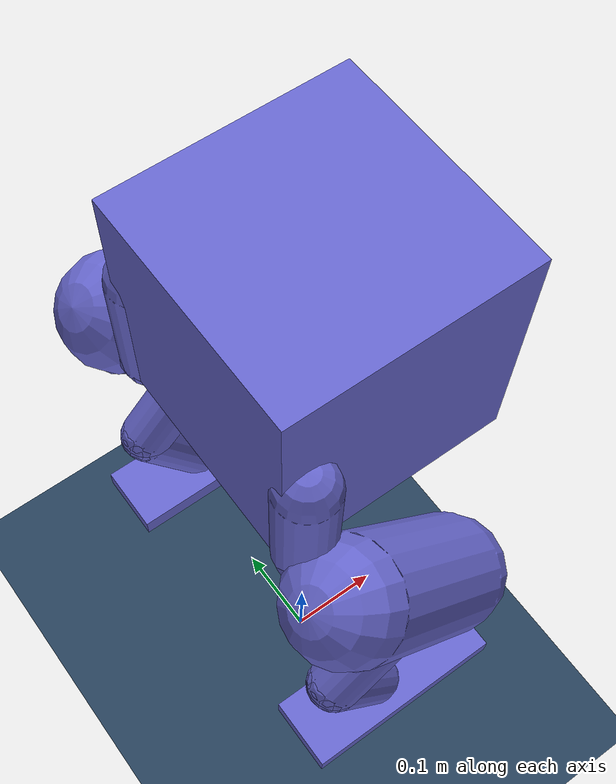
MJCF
<mujoco model="biped">
    <compiler angle="degree" autolimits="true"/>
    <option gravity="0 0 -9.81" integrator="RK4" timestep="0.01"/>

    <asset>
        <texture name="grid" type="2d" builtin="checker" width="512" height="512" rgb1=".1 .2 .3" rgb2=".2 .3 .4"/>
        <material name="grid" texture="grid" texrepeat="1 1" texuniform="true" reflectance=".2"/>
    </asset>

    <worldbody>
        <geom name="floor" size="0 0 .05" type="plane" material="grid" conaffinity="15" condim="3"/>
        <light name="spotlight" mode="targetbodycom" target="torso" diffuse=".8 .8 .8" specular="0.3 0.3 0.3" pos="0 -20 4" cutoff="10"/>

        <!-- Torso -->
        <body name="torso" pos="0 0 0.65" euler="0 0 90">
            <geom type="box" size="0.1 0.1 0.1" rgba="0.4 0.4 0.8 1"/>

            <!-- Left Leg -->
            <body name="left_pelvis" pos="-0.1 0.08 0" euler="0 0 -90">
                <joint name="LHIE_joint" type="hinge" axis="0 0 -1" pos="0 0 0" range="-90 90" ref="0"/>
                <geom type="capsule" size="0.025 0.025" fromto="0 0 0 0 0 -0.1" rgba="0.4 0.4 0.8 1"/>
                <body name="left_hip" pos="0 0 -0.1" euler="-90 0 0">
                    <joint name="LHAA_joint" type="hinge" axis="-1 0 0" pos="0 0 0" range="-90 90" ref="0"/>
                    <geom type="capsule" size="0.025 0.025" fromto="0 0 0 0 0 -0.05" rgba="0.4 0.4 0.8 1"/>
                    <body name="left_thigh" pos="0 0 -0.05" euler="90 -45 0">
                        <joint name="LHFE_joint" type="hinge" axis="0 -1 0" pos="0 0 0" range="-45 135" ref="45"/>
                        <geom type="capsule" size="0.05 0.25" fromto="0 0 0 0 0 -0.15" rgba="0.4 0.4 0.8 1"/>
                        <body name="left_shin" pos="0 0 -0.15" euler="0 90 0">
                            <joint name="LKFE_joint" type="hinge" axis="0 1 0" pos="0 0 0" range="0 135" ref="90"/>
                            <geom type="capsule" size="0.025 0.025" fromto="0 0 0 0 0 -0.15" rgba="0.4 0.4 0.8 1"/>
                            <body name="left_ankle" pos="0 0 -0.15" euler="0 -75 0">
                                <joint name="LADPF_joint" type="hinge" axis="0 -1 0" pos="0 0 0" range="0 135" ref="75"/>
                                <geom type="capsule" size="0.025 0.025" fromto="0 0 0 0 0 -0.1" rgba="0.4 0.4 0.8 1"/>
                                <body name="left_foot" pos="0 0 -0.13" euler="0 30 0">
                                    <joint name="LTFE_joint" type="hinge" axis="0 1 0" pos="0 0 0" range="-15 15"/>
                                    <joint name="LTAA_joint" type="hinge" axis="-1 0 0" pos="0 0 0" range="-15 15"/>
                                    <body name="left_toe" pos="0 0 0" euler="0 0 0">
                                        <geom type="box" size="0.1 0.035 0.01" rgba="0.4 0.4 0.8 1"/>
                                    </body>
                                </body>
                            </body>
                        </body>
                    </body>
                </body>
            </body>

            <!-- Right Leg -->
            <body name="right_pelvis" pos="0.1 0.08 0" euler="0 0 -90">
                <joint name="RHIE_joint" type="hinge" axis="0 0 1" pos="0 0 0" range="-90 90" ref="0"/>
                <geom type="capsule" size="0.025 0.025" fromto="0 0 0 0 0 -0.1" rgba="0.4 0.4 0.8 1"/>
                <body name="right_hip" pos="0 0 -0.1" euler="-90 0 0">
                    <joint name="RHAA_joint" type="hinge" axis="1 0 0" pos="0 0 0" range="-90 90" ref="0"/>
                    <geom type="capsule" size="0.025 0.025" fromto="0 0 0 0 0 0.05" rgba="0.4 0.4 0.8 1"/>
                    <body name="right_thigh" pos="0 0 0.05" euler="90 -45 0">
                        <joint name="RHFE_joint" type="hinge" axis="0 -1 0" pos="0 0 0" range="-45 135" ref="45"/>
                        <geom type="capsule" size="0.05 0.25" fromto="0 0 0 0 0 -0.15" rgba="0.4 0.4 0.8 1"/>
                        <body name="right_shin" pos="0 0 -0.15" euler="0 90 0">
                            <joint name="RKFE_joint" type="hinge" axis="0 1 0" pos="0 0 0" range="0 135" ref="90"/>
                            <geom type="capsule" size="0.025 0.025" fromto="0 0 0 0 0 -0.15" rgba="0.4 0.4 0.8 1"/>
                            <body name="right_ankle" pos="0 0 -0.15" euler="0 -75 0">
                                <joint name="RADPF_joint" type="hinge" axis="0 -1 0" pos="0 0 0" range="0 135" ref="75"/>
                                <geom type="capsule" size="0.025 0.025" fromto="0 0 0 0 0 -0.1" rgba="0.4 0.4 0.8 1"/>
                                <body name="right_foot" pos="0 0 -0.13" euler="0 30 0">
                                    <joint name="RTFE_joint" type="hinge" axis="0 -1 0" pos="0 0 0" range="-15 15"/>
                                    <joint name="RTAA_joint" type="hinge" axis="1 0 0" pos="0 0 0" range="-15 15"/>
                                    <body name="right_toe" pos="0 0 0" euler="0 0 0">
                                        <geom type="box" size="0.1 0.035 0.01" rgba="0.4 0.4 0.8 1"/>
                                    </body>
                                </body>
                            </body>
                        </body>
                    </body>
                </body>
            </body>

        </body>

    </worldbody>

    <!-- Actuators for the hips and knees -->
    <actuator>
        <motor name="LHIE_motor" joint="LHIE_joint" ctrlrange="-1 1" gear="100"/>
        <motor name="LHAA_motor" joint="LHAA_joint" ctrlrange="-1 1" gear="100"/>
        <motor name="LHFE_motor" joint="LHFE_joint" ctrlrange="-1 1" gear="100"/>
        <motor name="LKFE_motor" joint="LKFE_joint" ctrlrange="-1 1" gear="100"/>
        <motor name="LADPF_motor" joint="LADPF_joint" ctrlrange="-1 1" gear="100"/>
        <motor name="LTFE_motor" joint="LTFE_joint" ctrlrange="-1 1" gear="100"/>
        <motor name="LTAA_motor" joint="LTAA_joint" ctrlrange="-1 1" gear="100"/>
        <motor name="RHIE_motor" joint="RHIE_joint" ctrlrange="-1 1" gear="100"/>
        <motor name="RHAA_motor" joint="RHAA_joint" ctrlrange="-1 1" gear="100"/>
        <motor name="RHFE_motor" joint="RHFE_joint" ctrlrange="-1 1" gear="100"/>
        <motor name="RKFE_motor" joint="RKFE_joint" ctrlrange="-1 1" gear="100"/>
        <motor name="RADPF_motor" joint="RADPF_joint" ctrlrange="-1 1" gear="100"/>
        <motor name="RTFE_motor" joint="RTFE_joint" ctrlrange="-1 1" gear="100"/>
        <motor name="RTAA_motor" joint="RTAA_joint" ctrlrange="-1 1" gear="100"/>
    </actuator>
</mujoco>
